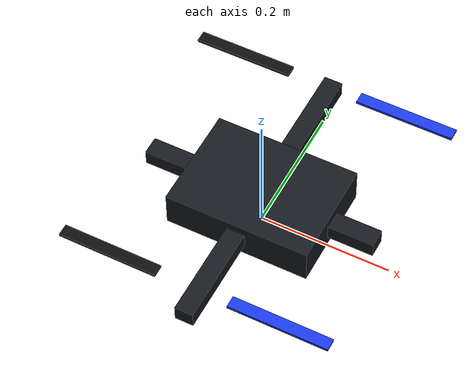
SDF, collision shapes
<?xml version="1.0" encoding="UTF-8"?>
<sdf version="1.9">
  <model name="iris_ftc">
    <pose>0 0 0.05 0 0 0</pose>
    <self_collide>false</self_collide>
    <static>false</static>

    <link name="base_link">
      <inertial>
        <mass>1.5</mass>
        <inertia>
          <ixx>0.029125</ixx>
          <ixy>0</ixy>
          <ixz>0</ixz>
          <iyy>0.029125</iyy>
          <iyz>0</iyz>
          <izz>0.055225</izz>
        </inertia>
      </inertial>
      <gravity>true</gravity>
      <velocity_decay />

      <visual name="body_visual">
        <pose>0 0 0 0 0 0</pose>
        <geometry>
          <mesh>
            <scale>1 1 1</scale>
            <uri>model://iris_ftc/meshes/iris.stl</uri>
          </mesh>
        </geometry>
        <material>
          <diffuse>0.08 0.10 0.12 1.0</diffuse>
          <specular>0.2 0.2 0.2 1.0</specular>
        </material>
      </visual>
      <collision name="body_collision">
        <pose>0 0 0 0 0 0</pose>
        <geometry>
          <box>
            <size>0.22 0.16 0.055</size>
          </box>
        </geometry>
      </collision>

      <collision name="arm_x_collision">
        <pose>0 0 0.002 0 0 0</pose>
        <geometry>
          <box>
            <size>0.36 0.028 0.024</size>
          </box>
        </geometry>
      </collision>

      <collision name="arm_y_collision">
        <pose>0 0 0.002 0 0 0</pose>
        <geometry>
          <box>
            <size>0.028 0.46 0.024</size>
          </box>
        </geometry>
      </collision>

      <sensor name="air_pressure_sensor" type="air_pressure">
        <gz_frame_id>base_link</gz_frame_id>
        <always_on>1</always_on>
        <update_rate>50</update_rate>
        <air_pressure>
          <pressure>
            <noise type="gaussian">
              <mean>0</mean>
              <stddev>3</stddev>
            </noise>
          </pressure>
        </air_pressure>
      </sensor>
      <sensor name="magnetometer_sensor" type="magnetometer">
        <gz_frame_id>base_link</gz_frame_id>
        <always_on>1</always_on>
        <update_rate>100</update_rate>
        <magnetometer>
          <x>
            <noise type="gaussian">
              <stddev>0.0001</stddev>
            </noise>
          </x>
          <y>
            <noise type="gaussian">
              <stddev>0.0001</stddev>
            </noise>
          </y>
          <z>
            <noise type="gaussian">
              <stddev>0.0001</stddev>
            </noise>
          </z>
        </magnetometer>
      </sensor>
      <sensor name="imu_sensor" type="imu">
        <gz_frame_id>base_link</gz_frame_id>
        <always_on>1</always_on>
        <update_rate>512</update_rate>
        <imu>
          <angular_velocity>
            <x>
              <noise type="gaussian">
                <mean>0.0</mean>
                <stddev>0.0008726646</stddev>
              </noise>
            </x>
            <y>
              <noise type="gaussian">
                <mean>0.0</mean>
                <stddev>0.0008726646</stddev>
              </noise>
            </y>
            <z>
              <noise type="gaussian">
                <mean>0.0</mean>
                <stddev>0.0008726646</stddev>
              </noise>
            </z>
          </angular_velocity>
          <linear_acceleration>
            <x>
              <noise type="gaussian">
                <mean>0.0</mean>
                <stddev>0.00637</stddev>
              </noise>
            </x>
            <y>
              <noise type="gaussian">
                <mean>0.0</mean>
                <stddev>0.00637</stddev>
              </noise>
            </y>
            <z>
              <noise type="gaussian">
                <mean>0.0</mean>
                <stddev>0.00686</stddev>
              </noise>
            </z>
          </linear_acceleration>
        </imu>
      </sensor>
      <sensor name="navsat_sensor" type="navsat">
        <gz_frame_id>base_link</gz_frame_id>
        <always_on>1</always_on>
        <update_rate>30</update_rate>
      </sensor>
    </link>

    <link name="rotor_0">
      <pose>0.13 -0.20 0.035 0 0 0</pose>
      <inertial>
        <mass>0.005</mass>
        <inertia>
          <ixx>9.75e-07</ixx>
          <ixy>0</ixy>
          <ixz>0</ixz>
          <iyy>0.0000166</iyy>
          <iyz>0</iyz>
          <izz>0.0000166</izz>
        </inertia>
      </inertial>
      <visual name="rotor_0_visual">
        <pose>0 0 0 0 0 0</pose>
        <geometry>
          <mesh>
            <scale>1 1 1</scale>
            <uri>model://iris_ftc/meshes/iris_prop_ccw.dae</uri>
          </mesh>
        </geometry>
        <material>
          <diffuse>0.1 0.22 0.9 1.0</diffuse>
        </material>
      </visual>
      <collision name="rotor_0_collision">
        <geometry>
          <box>
            <size>0.15 0.018 0.004</size>
          </box>
        </geometry>
      </collision>
    </link>
    <joint name="rotor_0_joint" type="revolute">
      <parent>base_link</parent>
      <child>rotor_0</child>
      <axis>
        <xyz>0 0 1</xyz>
        <limit>
          <lower>-1e+16</lower>
          <upper>1e+16</upper>
        </limit>
        <dynamics>
          <spring_reference>0</spring_reference>
          <spring_stiffness>0</spring_stiffness>
        </dynamics>
      </axis>
    </joint>

    <link name="rotor_1">
      <pose>-0.13 0.20 0.035 0 0 0</pose>
      <inertial>
        <mass>0.005</mass>
        <inertia>
          <ixx>9.75e-07</ixx>
          <ixy>0</ixy>
          <ixz>0</ixz>
          <iyy>0.0000166</iyy>
          <iyz>0</iyz>
          <izz>0.0000166</izz>
        </inertia>
      </inertial>
      <visual name="rotor_1_visual">
        <pose>0 0 0 0 0 0</pose>
        <geometry>
          <mesh>
            <scale>1 1 1</scale>
            <uri>model://iris_ftc/meshes/iris_prop_ccw.dae</uri>
          </mesh>
        </geometry>
        <material>
          <diffuse>0.05 0.05 0.05 1.0</diffuse>
        </material>
      </visual>
      <collision name="rotor_1_collision">
        <geometry>
          <box>
            <size>0.15 0.018 0.004</size>
          </box>
        </geometry>
      </collision>
    </link>
    <joint name="rotor_1_joint" type="revolute">
      <parent>base_link</parent>
      <child>rotor_1</child>
      <axis>
        <xyz>0 0 1</xyz>
        <limit>
          <lower>-1e+16</lower>
          <upper>1e+16</upper>
        </limit>
        <dynamics>
          <spring_reference>0</spring_reference>
          <spring_stiffness>0</spring_stiffness>
        </dynamics>
      </axis>
    </joint>

    <link name="rotor_2">
      <pose>0.13 0.20 0.035 0 0 0</pose>
      <inertial>
        <mass>0.005</mass>
        <inertia>
          <ixx>9.75e-07</ixx>
          <ixy>0</ixy>
          <ixz>0</ixz>
          <iyy>0.0000166</iyy>
          <iyz>0</iyz>
          <izz>0.0000166</izz>
        </inertia>
      </inertial>
      <visual name="rotor_2_visual">
        <pose>0 0 0 0 0 0</pose>
        <geometry>
          <mesh>
            <scale>1 1 1</scale>
            <uri>model://iris_ftc/meshes/iris_prop_cw.dae</uri>
          </mesh>
        </geometry>
        <material>
          <diffuse>0.1 0.22 0.9 1.0</diffuse>
        </material>
      </visual>
      <collision name="rotor_2_collision">
        <geometry>
          <box>
            <size>0.15 0.018 0.004</size>
          </box>
        </geometry>
      </collision>
    </link>
    <joint name="rotor_2_joint" type="revolute">
      <parent>base_link</parent>
      <child>rotor_2</child>
      <axis>
        <xyz>0 0 1</xyz>
        <limit>
          <lower>-1e+16</lower>
          <upper>1e+16</upper>
        </limit>
        <dynamics>
          <spring_reference>0</spring_reference>
          <spring_stiffness>0</spring_stiffness>
        </dynamics>
      </axis>
    </joint>

    <link name="rotor_3">
      <pose>-0.13 -0.20 0.035 0 0 0</pose>
      <inertial>
        <mass>0.005</mass>
        <inertia>
          <ixx>9.75e-07</ixx>
          <ixy>0</ixy>
          <ixz>0</ixz>
          <iyy>0.0000166</iyy>
          <iyz>0</iyz>
          <izz>0.0000166</izz>
        </inertia>
      </inertial>
      <visual name="rotor_3_visual">
        <pose>0 0 0 0 0 0</pose>
        <geometry>
          <mesh>
            <scale>1 1 1</scale>
            <uri>model://iris_ftc/meshes/iris_prop_cw.dae</uri>
          </mesh>
        </geometry>
        <material>
          <diffuse>0.05 0.05 0.05 1.0</diffuse>
        </material>
      </visual>
      <collision name="rotor_3_collision">
        <geometry>
          <box>
            <size>0.15 0.018 0.004</size>
          </box>
        </geometry>
      </collision>
    </link>
    <joint name="rotor_3_joint" type="revolute">
      <parent>base_link</parent>
      <child>rotor_3</child>
      <axis>
        <xyz>0 0 1</xyz>
        <limit>
          <lower>-1e+16</lower>
          <upper>1e+16</upper>
        </limit>
        <dynamics>
          <spring_reference>0</spring_reference>
          <spring_stiffness>0</spring_stiffness>
        </dynamics>
      </axis>
    </joint>

    <plugin filename="gz-sim-multicopter-motor-model-system" name="gz::sim::systems::MulticopterMotorModel">
      <jointName>rotor_0_joint</jointName>
      <linkName>rotor_0</linkName>
      <turningDirection>ccw</turningDirection>
      <timeConstantUp>0.0125</timeConstantUp>
      <timeConstantDown>0.025</timeConstantDown>
      <maxRotVelocity>1250.0</maxRotVelocity>
      <motorConstant>5.84e-06</motorConstant>
      <momentConstant>0.06</momentConstant>
      <commandSubTopic>command/motor_speed</commandSubTopic>
      <motorNumber>0</motorNumber>
      <rotorDragCoefficient>0.000175</rotorDragCoefficient>
      <rollingMomentCoefficient>1e-06</rollingMomentCoefficient>
      <rotorVelocitySlowdownSim>10</rotorVelocitySlowdownSim>
      <motorType>velocity</motorType>
    </plugin>
    <plugin filename="gz-sim-multicopter-motor-model-system" name="gz::sim::systems::MulticopterMotorModel">
      <jointName>rotor_1_joint</jointName>
      <linkName>rotor_1</linkName>
      <turningDirection>ccw</turningDirection>
      <timeConstantUp>0.0125</timeConstantUp>
      <timeConstantDown>0.025</timeConstantDown>
      <maxRotVelocity>1250.0</maxRotVelocity>
      <motorConstant>5.84e-06</motorConstant>
      <momentConstant>0.06</momentConstant>
      <commandSubTopic>command/motor_speed</commandSubTopic>
      <motorNumber>1</motorNumber>
      <rotorDragCoefficient>0.000175</rotorDragCoefficient>
      <rollingMomentCoefficient>1e-06</rollingMomentCoefficient>
      <rotorVelocitySlowdownSim>10</rotorVelocitySlowdownSim>
      <motorType>velocity</motorType>
    </plugin>
    <plugin filename="gz-sim-multicopter-motor-model-system" name="gz::sim::systems::MulticopterMotorModel">
      <jointName>rotor_2_joint</jointName>
      <linkName>rotor_2</linkName>
      <turningDirection>cw</turningDirection>
      <timeConstantUp>0.0125</timeConstantUp>
      <timeConstantDown>0.025</timeConstantDown>
      <maxRotVelocity>1250.0</maxRotVelocity>
      <motorConstant>5.84e-06</motorConstant>
      <momentConstant>0.06</momentConstant>
      <commandSubTopic>command/motor_speed</commandSubTopic>
      <motorNumber>2</motorNumber>
      <rotorDragCoefficient>0.000175</rotorDragCoefficient>
      <rollingMomentCoefficient>1e-06</rollingMomentCoefficient>
      <rotorVelocitySlowdownSim>10</rotorVelocitySlowdownSim>
      <motorType>velocity</motorType>
    </plugin>
    <plugin filename="gz-sim-multicopter-motor-model-system" name="gz::sim::systems::MulticopterMotorModel">
      <jointName>rotor_3_joint</jointName>
      <linkName>rotor_3</linkName>
      <turningDirection>cw</turningDirection>
      <timeConstantUp>0.0125</timeConstantUp>
      <timeConstantDown>0.025</timeConstantDown>
      <maxRotVelocity>1250.0</maxRotVelocity>
      <motorConstant>5.84e-06</motorConstant>
      <momentConstant>0.06</momentConstant>
      <commandSubTopic>command/motor_speed</commandSubTopic>
      <motorNumber>3</motorNumber>
      <rotorDragCoefficient>0.000175</rotorDragCoefficient>
      <rollingMomentCoefficient>1e-06</rollingMomentCoefficient>
      <rotorVelocitySlowdownSim>10</rotorVelocitySlowdownSim>
      <motorType>velocity</motorType>
    </plugin>
    <plugin filename="MotorFailurePlugin" name="gz::sim::systems::MotorFailureSystem">
    </plugin>
    <plugin filename="libIrisFtcAerodynamicsSystemPlugin.so"
            name="gz::sim::systems::IrisFtcAerodynamicsSystem">
      <linkName>base_link</linkName>
      <mass>1.5</mass>
      <cx>0.306</cx>
      <cy1>0.129</cy1>
      <cy2>-0.0339</cy2>
      <velocityCutoffHz>2.0</velocityCutoffHz>
      <axisCutoffHz>2.0</axisCutoffHz>
      <maxSpecificForce>35.0</maxSpecificForce>
      <minAirspeed>0.05</minAirspeed>
      <thrustAxisBody>0 0 1</thrustAxisBody>
      <spinAxisBody>0 0 1</spinAxisBody>
      <lateralSignMultiplier>1.0</lateralSignMultiplier>
      <enableForce>true</enableForce>
      <enableMoment>true</enableMoment>
      <momentScale>1.0</momentScale>
      <maXBias>0.0</maXBias>
      <maXCos>0.0075</maXCos>
      <maXSin>0.0</maXSin>
      <maYBias>0.009</maYBias>
      <maYCos>0.01</maYCos>
      <maYSin>0.0</maYSin>
      <maxMoment>5</maxMoment>
      <logFile>/tmp/iris_ftc_aero_debug.csv</logFile>
    </plugin>
  </model>
</sdf>
